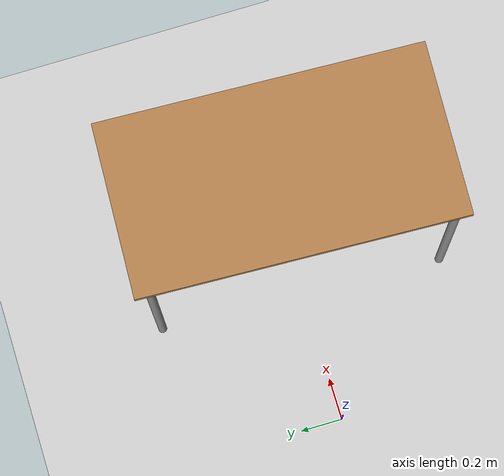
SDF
<sdf version="1.7">
 <world name="default">
  <model name="ground_plane">
   <static>1</static>
   <link name="link">
    <collision name="collision">
     <geometry><plane><normal>0 0 1</normal><size>100 100</size></plane></geometry>
     <surface><friction><ode><mu>100</mu><mu2>50</mu2></ode></friction></surface>
    </collision>
    <visual name="visual">
     <cast_shadows>0</cast_shadows>
     <geometry><plane><normal>0 0 1</normal><size>100 100</size></plane></geometry>
     <material>
      <script><uri>file://media/materials/scripts/gazebo.material</uri><name>Gazebo/Grey</name></script>
     </material>
    </visual>
    <velocity_decay><linear>0</linear><angular>0</angular></velocity_decay>
   </link>
  </model>
  <model name="table">
   <static>1</static>
   <link name="link">
    <collision name="surface">
     <pose>0 0 1 0 -0 0</pose>
     <geometry><box><size>1.5 0.8 0.03</size></box></geometry>
    </collision>
    <visual name="visual1">
     <pose>0 0 1 0 -0 0</pose>
     <geometry><box><size>1.5 0.8 0.03</size></box></geometry>
     <material>
      <script><uri>file://media/materials/scripts/gazebo.material</uri><name>Gazebo/Wood</name></script>
     </material>
    </visual>
    <collision name="front_left_leg">
     <pose>0.68 0.38 0.5 0 -0 0</pose>
     <geometry><cylinder><radius>0.02</radius><length>1</length></cylinder></geometry>
    </collision>
    <visual name="front_left_leg">
     <pose>0.68 0.38 0.5 0 -0 0</pose>
     <geometry><cylinder><radius>0.02</radius><length>1</length></cylinder></geometry>
     <material>
      <script><uri>file://media/materials/scripts/gazebo.material</uri><name>Gazebo/Grey</name></script>
     </material>
    </visual>
    <collision name="front_right_leg">
     <pose>0.68 -0.38 0.5 0 -0 0</pose>
     <geometry><cylinder><radius>0.02</radius><length>1</length></cylinder></geometry>
    </collision>
    <visual name="front_right_leg">
     <pose>0.68 -0.38 0.5 0 -0 0</pose>
     <geometry><cylinder><radius>0.02</radius><length>1</length></cylinder></geometry>
     <material>
      <script><uri>file://media/materials/scripts/gazebo.material</uri><name>Gazebo/Grey</name></script>
     </material>
    </visual>
    <collision name="back_right_leg">
     <pose>-0.68 -0.38 0.5 0 -0 0</pose>
     <geometry><cylinder><radius>0.02</radius><length>1</length></cylinder></geometry>
    </collision>
    <visual name="back_right_leg">
     <pose>-0.68 -0.38 0.5 0 -0 0</pose>
     <geometry><cylinder><radius>0.02</radius><length>1</length></cylinder></geometry>
     <material>
      <script><uri>file://media/materials/scripts/gazebo.material</uri><name>Gazebo/Grey</name></script>
     </material>
    </visual>
    <collision name="back_left_leg">
     <pose>-0.68 0.38 0.5 0 -0 0</pose>
     <geometry><cylinder><radius>0.02</radius><length>1</length></cylinder></geometry>
    </collision>
    <visual name="back_left_leg">
     <pose>-0.68 0.38 0.5 0 -0 0</pose>
     <geometry><cylinder><radius>0.02</radius><length>1</length></cylinder></geometry>
     <material>
      <script><uri>file://media/materials/scripts/gazebo.material</uri><name>Gazebo/Grey</name></script>
     </material>
    </visual>
    <velocity_decay><linear>0</linear><angular>0</angular></velocity_decay>
   </link>
   <pose>1.00964 -0.00865 0 0 -0 1.52729</pose>
  </model>
 </world>
</sdf>
